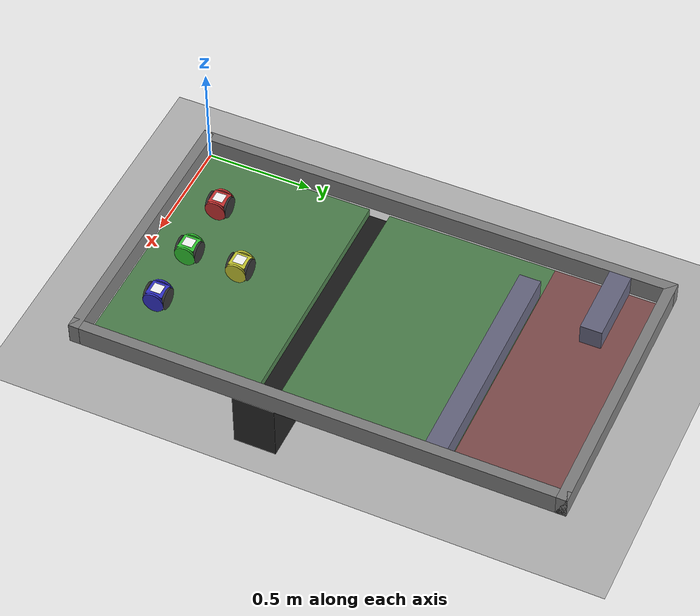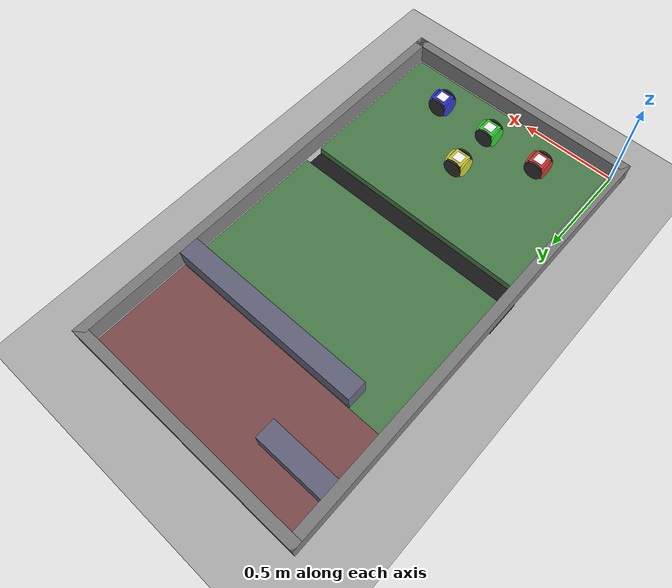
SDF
<?xml version="1.0"?>
<sdf version="1.9">
  <world name="docking_demo">
    <!-- Physics configuration - ODE with soft constraints -->
    <physics name="1ms" type="ode">
      <max_step_size>0.001</max_step_size>
      <real_time_factor>1.0</real_time_factor>
      <ode>
        <solver>
          <type>world</type>
          <iters>200</iters>
          <sor>1.3</sor>
        </solver>
        <constraints>
          <cfm>0.001</cfm>
          <erp>0.2</erp>
          <contact_max_correcting_vel>100</contact_max_correcting_vel>
          <contact_surface_layer>0.001</contact_surface_layer>
        </constraints>
      </ode>
    </physics>

    <!-- Required system plugins -->
    <plugin filename="gz-sim-physics-system" name="gz::sim::systems::Physics"></plugin>
    <plugin filename="gz-sim-user-commands-system" name="gz::sim::systems::UserCommands"></plugin>
    <plugin filename="gz-sim-scene-broadcaster-system" name="gz::sim::systems::SceneBroadcaster"></plugin>
    <plugin filename="gz-sim-imu-system" name="gz::sim::systems::Imu"></plugin>
    <plugin filename="gz-sim-sensors-system" name="gz::sim::systems::Sensors">
      <render_engine>ogre2</render_engine>
    </plugin>

    <!-- AttachablePlugin for dynamic docking -->
    <plugin filename="libattachable_joint_plugin.so" name="attachable_joint::AttachableJoint">
      <attachtopic>/attach</attachtopic>
    </plugin>

    <!-- Lighting -->
    <light type="directional" name="sun">
      <cast_shadows>true</cast_shadows>
      <pose>0 0 10 0 0 0</pose>
      <diffuse>0.8 0.8 0.8 1</diffuse>
      <specular>0.2 0.2 0.2 1</specular>
      <attenuation>
        <range>1000</range>
        <constant>0.9</constant>
        <linear>0.01</linear>
        <quadratic>0.001</quadratic>
      </attenuation>
      <direction>-0.5 0.1 -0.9</direction>
    </light>

    <!-- ==================== ENVIRONMENT ==================== -->

    <!-- Ground plane - visual only at z=-0.05, no collision (platforms provide collision) -->
    <model name="ground_plane">
      <static>true</static>
      <pose>0 0 -0.05 0 0 0</pose>
      <link name="link">
        <visual name="visual">
          <geometry><plane><normal>0 0 1</normal><size>10 10</size></plane></geometry>
          <material>
            <ambient>0.2 0.2 0.2 1</ambient>
            <diffuse>0.2 0.2 0.2 1</diffuse>
            <specular>0.1 0.1 0.1 1</specular>
          </material>
        </visual>
      </link>
    </model>

    <!-- Start platform (solid ground before the gap) - enlarged for docking -->
    <!-- y spans 0 to 0.8 (80cm deep), gap is now 10cm -->
    <model name="start_platform">
      <static>true</static>
      <pose>0.6 0.4 -0.03 0 0 0</pose>
      <link name="link">
        <collision name="collision">
          <geometry><box><size>1.2 0.8 0.04</size></box></geometry>
        </collision>
        <visual name="visual">
          <geometry><box><size>1.2 0.8 0.04</size></box></geometry>
          <material>
            <ambient>0.3 0.5 0.3 1</ambient>
            <diffuse>0.3 0.5 0.3 1</diffuse>
          </material>
        </visual>
      </link>
    </model>

    <!-- Middle platform (after the chasm, before narrow passage) - enlarged for docking -->
    <!-- y spans 0.9 to 1.7 (80cm deep) - extends to narrow wall -->
    <model name="middle_platform">
      <static>true</static>
      <pose>0.6 1.3 -0.03 0 0 0</pose>
      <link name="link">
        <collision name="collision">
          <geometry><box><size>1.2 0.8 0.04</size></box></geometry>
        </collision>
        <visual name="visual">
          <geometry><box><size>1.2 0.8 0.04</size></box></geometry>
          <material>
            <ambient>0.3 0.5 0.3 1</ambient>
            <diffuse>0.3 0.5 0.3 1</diffuse>
          </material>
        </visual>
      </link>
    </model>

    <!-- End platform (after narrow passage) -->
    <!-- y spans 1.7 to 2.2 -->
    <model name="end_platform">
      <static>true</static>
      <pose>0.6 1.95 -0.03 0 0 0</pose>
      <link name="link">
        <collision name="collision">
          <geometry><box><size>1.2 0.5 0.04</size></box></geometry>
        </collision>
        <visual name="visual">
          <geometry><box><size>1.2 0.5 0.04</size></box></geometry>
          <material>
            <ambient>0.5 0.3 0.3 1</ambient>
            <diffuse>0.5 0.3 0.3 1</diffuse>
          </material>
        </visual>
      </link>
    </model>

    <!-- GAP/CHASM: 20cm wide (y=0.7 to y=0.9) - robots must form chain to cross -->
    <!-- Visual indicator for the chasm (dark pit) -->
    <model name="chasm_visual">
      <static>true</static>
      <pose>0.6 0.8 -0.2 0 0 0</pose>
      <link name="link">
        <visual name="visual">
          <geometry><box><size>1.2 0.2 0.3</size></box></geometry>
          <material>
            <ambient>0.1 0.1 0.1 1</ambient>
            <diffuse>0.1 0.1 0.1 1</diffuse>
          </material>
        </visual>
      </link>
    </model>

    <!-- NARROW PASSAGEWAY: 18cm opening on LEFT side - requires turn to navigate -->
    <!-- Opening is from x=0 to x=0.18, wall covers x=0.18 to x=1.2 -->
    <model name="narrow_wall">
      <static>true</static>
      <pose>0.69 1.65 0.05 0 0 0</pose>
      <link name="link">
        <collision name="collision">
          <geometry><box><size>1.02 0.1 0.1</size></box></geometry>
        </collision>
        <visual name="visual">
          <geometry><box><size>1.02 0.1 0.1</size></box></geometry>
          <material>
            <ambient>0.4 0.4 0.5 1</ambient>
            <diffuse>0.4 0.4 0.5 1</diffuse>
          </material>
        </visual>
      </link>
    </model>
    <!-- Passageway on left: x=0 to x=0.18 (18cm wide) - robots must turn left to pass -->

    <!-- CHICANE WALL: Forces a turn after passageway, chains cannot fit -->
    <!-- Perpendicular wall extending from left perimeter, blocking straight path -->
    <!-- Robot must turn right after entering to go around this wall -->
    <model name="chicane_wall">
      <static>true</static>
      <pose>0.175 2.0 0.05 0 0 0</pose>
      <link name="link">
        <collision name="collision">
          <geometry><box><size>0.35 0.1 0.1</size></box></geometry>
        </collision>
        <visual name="visual">
          <geometry><box><size>0.35 0.1 0.1</size></box></geometry>
          <material>
            <ambient>0.4 0.4 0.5 1</ambient>
            <diffuse>0.4 0.4 0.5 1</diffuse>
          </material>
        </visual>
      </link>
    </model>
    <!-- Chicane spans x=0 to x=0.35 at y=2.0, giving 25cm clearance from narrow wall -->

    <!-- PERIMETER WALLS -->
    <!-- Left wall (x=0) -->
    <model name="wall_left">
      <static>true</static>
      <pose>-0.025 1.1 0.05 0 0 0</pose>
      <link name="link">
        <collision name="collision">
          <geometry><box><size>0.05 2.3 0.1</size></box></geometry>
        </collision>
        <visual name="visual">
          <geometry><box><size>0.05 2.3 0.1</size></box></geometry>
          <material>
            <ambient>0.5 0.5 0.5 1</ambient>
            <diffuse>0.5 0.5 0.5 1</diffuse>
          </material>
        </visual>
      </link>
    </model>

    <!-- Right wall (x=1.2) -->
    <model name="wall_right">
      <static>true</static>
      <pose>1.225 1.1 0.05 0 0 0</pose>
      <link name="link">
        <collision name="collision">
          <geometry><box><size>0.05 2.3 0.1</size></box></geometry>
        </collision>
        <visual name="visual">
          <geometry><box><size>0.05 2.3 0.1</size></box></geometry>
          <material>
            <ambient>0.5 0.5 0.5 1</ambient>
            <diffuse>0.5 0.5 0.5 1</diffuse>
          </material>
        </visual>
      </link>
    </model>

    <!-- Back wall (y=0) -->
    <model name="wall_back">
      <static>true</static>
      <pose>0.6 -0.025 0.05 0 0 0</pose>
      <link name="link">
        <collision name="collision">
          <geometry><box><size>1.3 0.05 0.1</size></box></geometry>
        </collision>
        <visual name="visual">
          <geometry><box><size>1.3 0.05 0.1</size></box></geometry>
          <material>
            <ambient>0.5 0.5 0.5 1</ambient>
            <diffuse>0.5 0.5 0.5 1</diffuse>
          </material>
        </visual>
      </link>
    </model>

    <!-- Front wall (y=2.2) -->
    <model name="wall_front">
      <static>true</static>
      <pose>0.6 2.225 0.05 0 0 0</pose>
      <link name="link">
        <collision name="collision">
          <geometry><box><size>1.3 0.05 0.1</size></box></geometry>
        </collision>
        <visual name="visual">
          <geometry><box><size>1.3 0.05 0.1</size></box></geometry>
          <material>
            <ambient>0.5 0.5 0.5 1</ambient>
            <diffuse>0.5 0.5 0.5 1</diffuse>
          </material>
        </visual>
      </link>
    </model>

    <!-- ==================== OVERHEAD CAMERA ==================== -->
    <!-- Static camera positioned above environment for AprilTag detection -->
    <model name="overhead_camera">
      <static>true</static>
      <pose>0.6 1.1 2.5 0 1.5707 0</pose>

      <link name="camera_link">
        <inertial>
          <mass>0.1</mass>
          <inertia>
            <ixx>0.01</ixx><iyy>0.01</iyy><izz>0.01</izz>
            <ixy>0</ixy><ixz>0</ixz><iyz>0</iyz>
          </inertia>
        </inertial>

        <sensor name="camera_sensor" type="camera">
          <camera>
            <horizontal_fov>1.047</horizontal_fov>
            <image>
              <width>1280</width>
              <height>960</height>
              <format>RGB_INT8</format>
            </image>
            <clip>
              <near>0.1</near>
              <far>10.0</far>
            </clip>
          </camera>
          <always_on>true</always_on>
          <update_rate>30</update_rate>
          <visualize>true</visualize>
          <topic>camera/image</topic>
        </sensor>
      </link>
    </model>

    <!-- ==================== ROBOTS ==================== -->
    <!-- Robots start on the start platform (x=0-1.2, y=0-0.7) -->

    <!-- ========== ROBOT 0 (Red) ========== -->
    <model name="robot_0" canonical_link="chassis">
      <pose>0.30 0.20 0.05 0 0 0</pose>

      <!-- Chassis: 8x8x8 cm -->
      <link name="chassis">
        <inertial>
          <mass>0.8</mass>
          <inertia>
            <ixx>0.000853</ixx><iyy>0.000853</iyy><izz>0.000853</izz>
            <ixy>0</ixy><ixz>0</ixz><iyz>0</iyz>
          </inertia>
        </inertial>
        <collision name="collision">
          <geometry><box><size>0.08 0.08 0.08</size></box></geometry>
        </collision>
        <visual name="visual">
          <geometry><box><size>0.08 0.08 0.08</size></box></geometry>
          <material>
            <ambient>0.8 0.2 0.2 1</ambient>
            <diffuse>0.8 0.2 0.2 1</diffuse>
          </material>
        </visual>
      </link>

      <!-- Left drive wheel -->
      <link name="left_wheel">
        <pose relative_to="chassis">0 0.045 0 -1.5707 0 0</pose>
        <inertial>
          <mass>0.1</mass>
          <inertia>
            <ixx>0.000066</ixx><iyy>0.000066</iyy><izz>0.000125</izz>
            <ixy>0</ixy><ixz>0</ixz><iyz>0</iyz>
          </inertia>
        </inertial>
        <collision name="collision">
          <geometry><cylinder><radius>0.05</radius><length>0.01</length></cylinder></geometry>
          <surface>
            <friction><ode><mu>1.0</mu><mu2>1.0</mu2><slip1>0.01</slip1><slip2>0.01</slip2></ode></friction>
          </surface>
        </collision>
        <visual name="visual">
          <geometry><cylinder><radius>0.05</radius><length>0.01</length></cylinder></geometry>
          <material><ambient>0.2 0.2 0.2 1</ambient><diffuse>0.2 0.2 0.2 1</diffuse></material>
        </visual>
      </link>
      <joint name="left_wheel_joint" type="revolute">
        <parent>chassis</parent>
        <child>left_wheel</child>
        <axis>
          <xyz expressed_in="__model__">0 1 0</xyz>
          <limit><lower>-1.79769e+308</lower><upper>1.79769e+308</upper></limit>
                  </axis>
      </joint>

      <!-- Right drive wheel -->
      <link name="right_wheel">
        <pose relative_to="chassis">0 -0.045 0 -1.5707 0 0</pose>
        <inertial>
          <mass>0.1</mass>
          <inertia>
            <ixx>0.000066</ixx><iyy>0.000066</iyy><izz>0.000125</izz>
            <ixy>0</ixy><ixz>0</ixz><iyz>0</iyz>
          </inertia>
        </inertial>
        <collision name="collision">
          <geometry><cylinder><radius>0.05</radius><length>0.01</length></cylinder></geometry>
          <surface>
            <friction><ode><mu>1.0</mu><mu2>1.0</mu2><slip1>0.01</slip1><slip2>0.01</slip2></ode></friction>
          </surface>
        </collision>
        <visual name="visual">
          <geometry><cylinder><radius>0.05</radius><length>0.01</length></cylinder></geometry>
          <material><ambient>0.2 0.2 0.2 1</ambient><diffuse>0.2 0.2 0.2 1</diffuse></material>
        </visual>
      </link>
      <joint name="right_wheel_joint" type="revolute">
        <parent>chassis</parent>
        <child>right_wheel</child>
        <axis>
          <xyz expressed_in="__model__">0 1 0</xyz>
          <limit><lower>-1.79769e+308</lower><upper>1.79769e+308</upper></limit>
                  </axis>
      </joint>

      <!-- Front support wheel (docking face) - NO COLLISION -->
      <link name="front_wheel">
        <pose relative_to="chassis">0.045 0 0 0 1.5707 0</pose>
        <inertial>
          <mass>0.1</mass>
          <inertia>
            <ixx>0.000066</ixx><iyy>0.000066</iyy><izz>0.000125</izz>
            <ixy>0</ixy><ixz>0</ixz><iyz>0</iyz>
          </inertia>
        </inertial>
        <visual name="visual">
          <geometry><cylinder><radius>0.05</radius><length>0.01</length></cylinder></geometry>
          <material><ambient>0.8 0.2 0.2 1</ambient><diffuse>0.8 0.2 0.2 1</diffuse></material>
        </visual>
      </link>
      <joint name="front_wheel_joint" type="revolute">
        <parent>chassis</parent>
        <child>front_wheel</child>
        <axis>
          <xyz expressed_in="__model__">1 0 0</xyz>
          <limit><lower>-1.79769e+308</lower><upper>1.79769e+308</upper></limit>
                  </axis>
      </joint>

      <!-- Back support wheel (docking face) - NO COLLISION -->
      <link name="back_wheel">
        <pose relative_to="chassis">-0.045 0 0 0 1.5707 0</pose>
        <inertial>
          <mass>0.1</mass>
          <inertia>
            <ixx>0.000066</ixx><iyy>0.000066</iyy><izz>0.000125</izz>
            <ixy>0</ixy><ixz>0</ixz><iyz>0</iyz>
          </inertia>
        </inertial>
        <visual name="visual">
          <geometry><cylinder><radius>0.05</radius><length>0.01</length></cylinder></geometry>
          <material><ambient>0.8 0.2 0.2 1</ambient><diffuse>0.8 0.2 0.2 1</diffuse></material>
        </visual>
      </link>
      <joint name="back_wheel_joint" type="revolute">
        <parent>chassis</parent>
        <child>back_wheel</child>
        <axis>
          <xyz expressed_in="__model__">1 0 0</xyz>
          <limit><lower>-1.79769e+308</lower><upper>1.79769e+308</upper></limit>
                  </axis>
      </joint>

      <!-- Front caster (small frictionless sphere for stability) -->
      <!-- Slightly smaller than drive wheels so it only touches when tipping -->
      <link name="front_caster">
        <pose relative_to="chassis">0.04 0 -0.042 0 0 0</pose>
        <inertial>
          <mass>0.01</mass>
          <inertia>
            <ixx>0.000001</ixx><iyy>0.000001</iyy><izz>0.000001</izz>
            <ixy>0</ixy><ixz>0</ixz><iyz>0</iyz>
          </inertia>
        </inertial>
        <collision name="collision">
          <geometry><sphere><radius>0.006</radius></sphere></geometry>
          <surface>
            <friction><ode><mu>0</mu><mu2>0</mu2></ode></friction>
          </surface>
        </collision>
        <visual name="visual">
          <geometry><sphere><radius>0.006</radius></sphere></geometry>
          <material><ambient>0.3 0.3 0.3 1</ambient><diffuse>0.3 0.3 0.3 1</diffuse></material>
        </visual>
      </link>
      <joint name="front_caster_joint" type="fixed">
        <parent>chassis</parent>
        <child>front_caster</child>
      </joint>

      <!-- Back caster (small frictionless sphere for stability) -->
      <link name="back_caster">
        <pose relative_to="chassis">-0.04 0 -0.042 0 0 0</pose>
        <inertial>
          <mass>0.01</mass>
          <inertia>
            <ixx>0.000001</ixx><iyy>0.000001</iyy><izz>0.000001</izz>
            <ixy>0</ixy><ixz>0</ixz><iyz>0</iyz>
          </inertia>
        </inertial>
        <collision name="collision">
          <geometry><sphere><radius>0.006</radius></sphere></geometry>
          <surface>
            <friction><ode><mu>0</mu><mu2>0</mu2></ode></friction>
          </surface>
        </collision>
        <visual name="visual">
          <geometry><sphere><radius>0.006</radius></sphere></geometry>
          <material><ambient>0.3 0.3 0.3 1</ambient><diffuse>0.3 0.3 0.3 1</diffuse></material>
        </visual>
      </link>
      <joint name="back_caster_joint" type="fixed">
        <parent>chassis</parent>
        <child>back_caster</child>
      </joint>

      <!-- IMU sensor -->
      <link name="imu_link">
        <pose relative_to="chassis">0 0 0 0 0 0</pose>
        <inertial>
          <mass>0.01</mass>
          <inertia>
            <ixx>0.000001</ixx><iyy>0.000001</iyy><izz>0.000001</izz>
            <ixy>0</ixy><ixz>0</ixz><iyz>0</iyz>
          </inertia>
        </inertial>
        <sensor name="imu_sensor" type="imu">
          <always_on>1</always_on>
          <update_rate>100</update_rate>
          <visualize>false</visualize>
          <imu>
            <angular_velocity>
              <x><noise type="gaussian"><mean>0.0</mean><stddev>0.0001</stddev></noise></x>
              <y><noise type="gaussian"><mean>0.0</mean><stddev>0.0001</stddev></noise></y>
              <z><noise type="gaussian"><mean>0.0</mean><stddev>0.0001</stddev></noise></z>
            </angular_velocity>
            <linear_acceleration>
              <x><noise type="gaussian"><mean>0.0</mean><stddev>0.001</stddev></noise></x>
              <y><noise type="gaussian"><mean>0.0</mean><stddev>0.001</stddev></noise></y>
              <z><noise type="gaussian"><mean>0.0</mean><stddev>0.001</stddev></noise></z>
            </linear_acceleration>
          </imu>
        </sensor>
      </link>
      <joint name="imu_joint" type="fixed">
        <parent>chassis</parent>
        <child>imu_link</child>
      </joint>

      <!-- AprilTag marker for overhead camera detection -->
      <link name="apriltag_marker">
        <pose relative_to="chassis">0 0 0.045 0 0 0</pose>
        <inertial>
          <mass>0.001</mass>
          <inertia>
            <ixx>0.0000001</ixx><iyy>0.0000001</iyy><izz>0.0000001</izz>
            <ixy>0</ixy><ixz>0</ixz><iyz>0</iyz>
          </inertia>
        </inertial>
        <visual name="apriltag_visual">
          <geometry><box><size>0.05 0.05 0.0005</size></box></geometry>
          <material>
            <ambient>1 1 1 1</ambient>
            <diffuse>1 1 1 1</diffuse>
            <specular>0 0 0 1</specular>
            <emissive>0 0 0 1</emissive>
            <pbr>
              <metal>
                <albedo_map>../materials/textures/apriltag_36h11_id_0.png</albedo_map>
                <metalness>0.0</metalness>
                <roughness>1.0</roughness>
              </metal>
            </pbr>
          </material>
        </visual>
      </link>
      <joint name="apriltag_joint" type="fixed">
        <parent>chassis</parent>
        <child>apriltag_marker</child>
      </joint>

      <plugin filename="gz-sim-diff-drive-system" name="gz::sim::systems::DiffDrive">
        <left_joint>left_wheel_joint</left_joint>
        <right_joint>right_wheel_joint</right_joint>
        <wheel_separation>0.09</wheel_separation>
        <wheel_radius>0.05</wheel_radius>
        <odom_publish_frequency>10</odom_publish_frequency>
        <cmd_timeout>10.0</cmd_timeout>
      </plugin>
    </model>

    <!-- ========== ROBOT 1 (Green) ========== -->
    <model name="robot_1" canonical_link="chassis">
      <pose>0.60 0.20 0.05 0 0 0</pose>

      <link name="chassis">
        <inertial>
          <mass>0.8</mass>
          <inertia>
            <ixx>0.000853</ixx><iyy>0.000853</iyy><izz>0.000853</izz>
            <ixy>0</ixy><ixz>0</ixz><iyz>0</iyz>
          </inertia>
        </inertial>
        <collision name="collision">
          <geometry><box><size>0.08 0.08 0.08</size></box></geometry>
        </collision>
        <visual name="visual">
          <geometry><box><size>0.08 0.08 0.08</size></box></geometry>
          <material>
            <ambient>0.2 0.8 0.2 1</ambient>
            <diffuse>0.2 0.8 0.2 1</diffuse>
          </material>
        </visual>
      </link>

      <link name="left_wheel">
        <pose relative_to="chassis">0 0.045 0 -1.5707 0 0</pose>
        <inertial>
          <mass>0.1</mass>
          <inertia>
            <ixx>0.000066</ixx><iyy>0.000066</iyy><izz>0.000125</izz>
            <ixy>0</ixy><ixz>0</ixz><iyz>0</iyz>
          </inertia>
        </inertial>
        <collision name="collision">
          <geometry><cylinder><radius>0.05</radius><length>0.01</length></cylinder></geometry>
          <surface>
            <friction><ode><mu>1.0</mu><mu2>1.0</mu2><slip1>0.01</slip1><slip2>0.01</slip2></ode></friction>
          </surface>
        </collision>
        <visual name="visual">
          <geometry><cylinder><radius>0.05</radius><length>0.01</length></cylinder></geometry>
          <material><ambient>0.2 0.2 0.2 1</ambient><diffuse>0.2 0.2 0.2 1</diffuse></material>
        </visual>
      </link>
      <joint name="left_wheel_joint" type="revolute">
        <parent>chassis</parent>
        <child>left_wheel</child>
        <axis>
          <xyz expressed_in="__model__">0 1 0</xyz>
          <limit><lower>-1.79769e+308</lower><upper>1.79769e+308</upper></limit>
                  </axis>
      </joint>

      <link name="right_wheel">
        <pose relative_to="chassis">0 -0.045 0 -1.5707 0 0</pose>
        <inertial>
          <mass>0.1</mass>
          <inertia>
            <ixx>0.000066</ixx><iyy>0.000066</iyy><izz>0.000125</izz>
            <ixy>0</ixy><ixz>0</ixz><iyz>0</iyz>
          </inertia>
        </inertial>
        <collision name="collision">
          <geometry><cylinder><radius>0.05</radius><length>0.01</length></cylinder></geometry>
          <surface>
            <friction><ode><mu>1.0</mu><mu2>1.0</mu2><slip1>0.01</slip1><slip2>0.01</slip2></ode></friction>
          </surface>
        </collision>
        <visual name="visual">
          <geometry><cylinder><radius>0.05</radius><length>0.01</length></cylinder></geometry>
          <material><ambient>0.2 0.2 0.2 1</ambient><diffuse>0.2 0.2 0.2 1</diffuse></material>
        </visual>
      </link>
      <joint name="right_wheel_joint" type="revolute">
        <parent>chassis</parent>
        <child>right_wheel</child>
        <axis>
          <xyz expressed_in="__model__">0 1 0</xyz>
          <limit><lower>-1.79769e+308</lower><upper>1.79769e+308</upper></limit>
                  </axis>
      </joint>

      <!-- Front support wheel (docking face) - NO COLLISION -->
      <link name="front_wheel">
        <pose relative_to="chassis">0.045 0 0 0 1.5707 0</pose>
        <inertial>
          <mass>0.1</mass>
          <inertia>
            <ixx>0.000066</ixx><iyy>0.000066</iyy><izz>0.000125</izz>
            <ixy>0</ixy><ixz>0</ixz><iyz>0</iyz>
          </inertia>
        </inertial>
        <visual name="visual">
          <geometry><cylinder><radius>0.05</radius><length>0.01</length></cylinder></geometry>
          <material><ambient>0.2 0.8 0.2 1</ambient><diffuse>0.2 0.8 0.2 1</diffuse></material>
        </visual>
      </link>
      <joint name="front_wheel_joint" type="revolute">
        <parent>chassis</parent>
        <child>front_wheel</child>
        <axis>
          <xyz expressed_in="__model__">1 0 0</xyz>
          <limit><lower>-1.79769e+308</lower><upper>1.79769e+308</upper></limit>
                  </axis>
      </joint>

      <!-- Back support wheel (docking face) - NO COLLISION -->
      <link name="back_wheel">
        <pose relative_to="chassis">-0.045 0 0 0 1.5707 0</pose>
        <inertial>
          <mass>0.1</mass>
          <inertia>
            <ixx>0.000066</ixx><iyy>0.000066</iyy><izz>0.000125</izz>
            <ixy>0</ixy><ixz>0</ixz><iyz>0</iyz>
          </inertia>
        </inertial>
        <visual name="visual">
          <geometry><cylinder><radius>0.05</radius><length>0.01</length></cylinder></geometry>
          <material><ambient>0.2 0.8 0.2 1</ambient><diffuse>0.2 0.8 0.2 1</diffuse></material>
        </visual>
      </link>
      <joint name="back_wheel_joint" type="revolute">
        <parent>chassis</parent>
        <child>back_wheel</child>
        <axis>
          <xyz expressed_in="__model__">1 0 0</xyz>
          <limit><lower>-1.79769e+308</lower><upper>1.79769e+308</upper></limit>
                  </axis>
      </joint>

      <!-- Front caster (small frictionless sphere for stability) -->
      <!-- Slightly smaller than drive wheels so it only touches when tipping -->
      <link name="front_caster">
        <pose relative_to="chassis">0.04 0 -0.042 0 0 0</pose>
        <inertial>
          <mass>0.01</mass>
          <inertia>
            <ixx>0.000001</ixx><iyy>0.000001</iyy><izz>0.000001</izz>
            <ixy>0</ixy><ixz>0</ixz><iyz>0</iyz>
          </inertia>
        </inertial>
        <collision name="collision">
          <geometry><sphere><radius>0.006</radius></sphere></geometry>
          <surface>
            <friction><ode><mu>0</mu><mu2>0</mu2></ode></friction>
          </surface>
        </collision>
        <visual name="visual">
          <geometry><sphere><radius>0.006</radius></sphere></geometry>
          <material><ambient>0.3 0.3 0.3 1</ambient><diffuse>0.3 0.3 0.3 1</diffuse></material>
        </visual>
      </link>
      <joint name="front_caster_joint" type="fixed">
        <parent>chassis</parent>
        <child>front_caster</child>
      </joint>

      <!-- Back caster (small frictionless sphere for stability) -->
      <link name="back_caster">
        <pose relative_to="chassis">-0.04 0 -0.042 0 0 0</pose>
        <inertial>
          <mass>0.01</mass>
          <inertia>
            <ixx>0.000001</ixx><iyy>0.000001</iyy><izz>0.000001</izz>
            <ixy>0</ixy><ixz>0</ixz><iyz>0</iyz>
          </inertia>
        </inertial>
        <collision name="collision">
          <geometry><sphere><radius>0.006</radius></sphere></geometry>
          <surface>
            <friction><ode><mu>0</mu><mu2>0</mu2></ode></friction>
          </surface>
        </collision>
        <visual name="visual">
          <geometry><sphere><radius>0.006</radius></sphere></geometry>
          <material><ambient>0.3 0.3 0.3 1</ambient><diffuse>0.3 0.3 0.3 1</diffuse></material>
        </visual>
      </link>
      <joint name="back_caster_joint" type="fixed">
        <parent>chassis</parent>
        <child>back_caster</child>
      </joint>

      <link name="imu_link">
        <pose relative_to="chassis">0 0 0 0 0 0</pose>
        <inertial>
          <mass>0.01</mass>
          <inertia>
            <ixx>0.000001</ixx><iyy>0.000001</iyy><izz>0.000001</izz>
            <ixy>0</ixy><ixz>0</ixz><iyz>0</iyz>
          </inertia>
        </inertial>
        <sensor name="imu_sensor" type="imu">
          <always_on>1</always_on>
          <update_rate>100</update_rate>
          <visualize>false</visualize>
          <imu>
            <angular_velocity>
              <x><noise type="gaussian"><mean>0.0</mean><stddev>0.0001</stddev></noise></x>
              <y><noise type="gaussian"><mean>0.0</mean><stddev>0.0001</stddev></noise></y>
              <z><noise type="gaussian"><mean>0.0</mean><stddev>0.0001</stddev></noise></z>
            </angular_velocity>
            <linear_acceleration>
              <x><noise type="gaussian"><mean>0.0</mean><stddev>0.001</stddev></noise></x>
              <y><noise type="gaussian"><mean>0.0</mean><stddev>0.001</stddev></noise></y>
              <z><noise type="gaussian"><mean>0.0</mean><stddev>0.001</stddev></noise></z>
            </linear_acceleration>
          </imu>
        </sensor>
      </link>
      <joint name="imu_joint" type="fixed">
        <parent>chassis</parent>
        <child>imu_link</child>
      </joint>

      <!-- AprilTag marker for overhead camera detection -->
      <link name="apriltag_marker">
        <pose relative_to="chassis">0 0 0.045 0 0 0</pose>
        <inertial>
          <mass>0.001</mass>
          <inertia>
            <ixx>0.0000001</ixx><iyy>0.0000001</iyy><izz>0.0000001</izz>
            <ixy>0</ixy><ixz>0</ixz><iyz>0</iyz>
          </inertia>
        </inertial>
        <visual name="apriltag_visual">
          <geometry><box><size>0.05 0.05 0.0005</size></box></geometry>
          <material>
            <ambient>1 1 1 1</ambient>
            <diffuse>1 1 1 1</diffuse>
            <specular>0 0 0 1</specular>
            <emissive>0 0 0 1</emissive>
            <pbr>
              <metal>
                <albedo_map>../materials/textures/apriltag_36h11_id_1.png</albedo_map>
                <metalness>0.0</metalness>
                <roughness>1.0</roughness>
              </metal>
            </pbr>
          </material>
        </visual>
      </link>
      <joint name="apriltag_joint" type="fixed">
        <parent>chassis</parent>
        <child>apriltag_marker</child>
      </joint>

      <plugin filename="gz-sim-diff-drive-system" name="gz::sim::systems::DiffDrive">
        <left_joint>left_wheel_joint</left_joint>
        <right_joint>right_wheel_joint</right_joint>
        <wheel_separation>0.09</wheel_separation>
        <wheel_radius>0.05</wheel_radius>
        <odom_publish_frequency>10</odom_publish_frequency>
        <cmd_timeout>10.0</cmd_timeout>
      </plugin>
    </model>

    <!-- ========== ROBOT 2 (Blue) ========== -->
    <model name="robot_2" canonical_link="chassis">
      <pose>0.90 0.20 0.05 0 0 0</pose>

      <link name="chassis">
        <inertial>
          <mass>0.8</mass>
          <inertia>
            <ixx>0.000853</ixx><iyy>0.000853</iyy><izz>0.000853</izz>
            <ixy>0</ixy><ixz>0</ixz><iyz>0</iyz>
          </inertia>
        </inertial>
        <collision name="collision">
          <geometry><box><size>0.08 0.08 0.08</size></box></geometry>
        </collision>
        <visual name="visual">
          <geometry><box><size>0.08 0.08 0.08</size></box></geometry>
          <material>
            <ambient>0.2 0.2 0.8 1</ambient>
            <diffuse>0.2 0.2 0.8 1</diffuse>
          </material>
        </visual>
      </link>

      <link name="left_wheel">
        <pose relative_to="chassis">0 0.045 0 -1.5707 0 0</pose>
        <inertial>
          <mass>0.1</mass>
          <inertia>
            <ixx>0.000066</ixx><iyy>0.000066</iyy><izz>0.000125</izz>
            <ixy>0</ixy><ixz>0</ixz><iyz>0</iyz>
          </inertia>
        </inertial>
        <collision name="collision">
          <geometry><cylinder><radius>0.05</radius><length>0.01</length></cylinder></geometry>
          <surface>
            <friction><ode><mu>1.0</mu><mu2>1.0</mu2><slip1>0.01</slip1><slip2>0.01</slip2></ode></friction>
          </surface>
        </collision>
        <visual name="visual">
          <geometry><cylinder><radius>0.05</radius><length>0.01</length></cylinder></geometry>
          <material><ambient>0.2 0.2 0.2 1</ambient><diffuse>0.2 0.2 0.2 1</diffuse></material>
        </visual>
      </link>
      <joint name="left_wheel_joint" type="revolute">
        <parent>chassis</parent>
        <child>left_wheel</child>
        <axis>
          <xyz expressed_in="__model__">0 1 0</xyz>
          <limit><lower>-1.79769e+308</lower><upper>1.79769e+308</upper></limit>
                  </axis>
      </joint>

      <link name="right_wheel">
        <pose relative_to="chassis">0 -0.045 0 -1.5707 0 0</pose>
        <inertial>
          <mass>0.1</mass>
          <inertia>
            <ixx>0.000066</ixx><iyy>0.000066</iyy><izz>0.000125</izz>
            <ixy>0</ixy><ixz>0</ixz><iyz>0</iyz>
          </inertia>
        </inertial>
        <collision name="collision">
          <geometry><cylinder><radius>0.05</radius><length>0.01</length></cylinder></geometry>
          <surface>
            <friction><ode><mu>1.0</mu><mu2>1.0</mu2><slip1>0.01</slip1><slip2>0.01</slip2></ode></friction>
          </surface>
        </collision>
        <visual name="visual">
          <geometry><cylinder><radius>0.05</radius><length>0.01</length></cylinder></geometry>
          <material><ambient>0.2 0.2 0.2 1</ambient><diffuse>0.2 0.2 0.2 1</diffuse></material>
        </visual>
      </link>
      <joint name="right_wheel_joint" type="revolute">
        <parent>chassis</parent>
        <child>right_wheel</child>
        <axis>
          <xyz expressed_in="__model__">0 1 0</xyz>
          <limit><lower>-1.79769e+308</lower><upper>1.79769e+308</upper></limit>
                  </axis>
      </joint>

      <!-- Front support wheel (docking face) - NO COLLISION -->
      <link name="front_wheel">
        <pose relative_to="chassis">0.045 0 0 0 1.5707 0</pose>
        <inertial>
          <mass>0.1</mass>
          <inertia>
            <ixx>0.000066</ixx><iyy>0.000066</iyy><izz>0.000125</izz>
            <ixy>0</ixy><ixz>0</ixz><iyz>0</iyz>
          </inertia>
        </inertial>
        <visual name="visual">
          <geometry><cylinder><radius>0.05</radius><length>0.01</length></cylinder></geometry>
          <material><ambient>0.2 0.2 0.8 1</ambient><diffuse>0.2 0.2 0.8 1</diffuse></material>
        </visual>
      </link>
      <joint name="front_wheel_joint" type="revolute">
        <parent>chassis</parent>
        <child>front_wheel</child>
        <axis>
          <xyz expressed_in="__model__">1 0 0</xyz>
          <limit><lower>-1.79769e+308</lower><upper>1.79769e+308</upper></limit>
                  </axis>
      </joint>

      <!-- Back support wheel (docking face) - NO COLLISION -->
      <link name="back_wheel">
        <pose relative_to="chassis">-0.045 0 0 0 1.5707 0</pose>
        <inertial>
          <mass>0.1</mass>
          <inertia>
            <ixx>0.000066</ixx><iyy>0.000066</iyy><izz>0.000125</izz>
            <ixy>0</ixy><ixz>0</ixz><iyz>0</iyz>
          </inertia>
        </inertial>
        <visual name="visual">
          <geometry><cylinder><radius>0.05</radius><length>0.01</length></cylinder></geometry>
          <material><ambient>0.2 0.2 0.8 1</ambient><diffuse>0.2 0.2 0.8 1</diffuse></material>
        </visual>
      </link>
      <joint name="back_wheel_joint" type="revolute">
        <parent>chassis</parent>
        <child>back_wheel</child>
        <axis>
          <xyz expressed_in="__model__">1 0 0</xyz>
          <limit><lower>-1.79769e+308</lower><upper>1.79769e+308</upper></limit>
                  </axis>
      </joint>

      <!-- Front caster (small frictionless sphere for stability) -->
      <!-- Slightly smaller than drive wheels so it only touches when tipping -->
      <link name="front_caster">
        <pose relative_to="chassis">0.04 0 -0.042 0 0 0</pose>
        <inertial>
          <mass>0.01</mass>
          <inertia>
            <ixx>0.000001</ixx><iyy>0.000001</iyy><izz>0.000001</izz>
            <ixy>0</ixy><ixz>0</ixz><iyz>0</iyz>
          </inertia>
        </inertial>
        <collision name="collision">
          <geometry><sphere><radius>0.006</radius></sphere></geometry>
          <surface>
            <friction><ode><mu>0</mu><mu2>0</mu2></ode></friction>
          </surface>
        </collision>
        <visual name="visual">
          <geometry><sphere><radius>0.006</radius></sphere></geometry>
          <material><ambient>0.3 0.3 0.3 1</ambient><diffuse>0.3 0.3 0.3 1</diffuse></material>
        </visual>
      </link>
      <joint name="front_caster_joint" type="fixed">
        <parent>chassis</parent>
        <child>front_caster</child>
      </joint>

      <!-- Back caster (small frictionless sphere for stability) -->
      <link name="back_caster">
        <pose relative_to="chassis">-0.04 0 -0.042 0 0 0</pose>
        <inertial>
          <mass>0.01</mass>
          <inertia>
            <ixx>0.000001</ixx><iyy>0.000001</iyy><izz>0.000001</izz>
            <ixy>0</ixy><ixz>0</ixz><iyz>0</iyz>
          </inertia>
        </inertial>
        <collision name="collision">
          <geometry><sphere><radius>0.006</radius></sphere></geometry>
          <surface>
            <friction><ode><mu>0</mu><mu2>0</mu2></ode></friction>
          </surface>
        </collision>
        <visual name="visual">
          <geometry><sphere><radius>0.006</radius></sphere></geometry>
          <material><ambient>0.3 0.3 0.3 1</ambient><diffuse>0.3 0.3 0.3 1</diffuse></material>
        </visual>
      </link>
      <joint name="back_caster_joint" type="fixed">
        <parent>chassis</parent>
        <child>back_caster</child>
      </joint>

      <link name="imu_link">
        <pose relative_to="chassis">0 0 0 0 0 0</pose>
        <inertial>
          <mass>0.01</mass>
          <inertia>
            <ixx>0.000001</ixx><iyy>0.000001</iyy><izz>0.000001</izz>
            <ixy>0</ixy><ixz>0</ixz><iyz>0</iyz>
          </inertia>
        </inertial>
        <sensor name="imu_sensor" type="imu">
          <always_on>1</always_on>
          <update_rate>100</update_rate>
          <visualize>false</visualize>
          <imu>
            <angular_velocity>
              <x><noise type="gaussian"><mean>0.0</mean><stddev>0.0001</stddev></noise></x>
              <y><noise type="gaussian"><mean>0.0</mean><stddev>0.0001</stddev></noise></y>
              <z><noise type="gaussian"><mean>0.0</mean><stddev>0.0001</stddev></noise></z>
            </angular_velocity>
            <linear_acceleration>
              <x><noise type="gaussian"><mean>0.0</mean><stddev>0.001</stddev></noise></x>
              <y><noise type="gaussian"><mean>0.0</mean><stddev>0.001</stddev></noise></y>
              <z><noise type="gaussian"><mean>0.0</mean><stddev>0.001</stddev></noise></z>
            </linear_acceleration>
          </imu>
        </sensor>
      </link>
      <joint name="imu_joint" type="fixed">
        <parent>chassis</parent>
        <child>imu_link</child>
      </joint>

      <!-- AprilTag marker for overhead camera detection -->
      <link name="apriltag_marker">
        <pose relative_to="chassis">0 0 0.045 0 0 0</pose>
        <inertial>
          <mass>0.001</mass>
          <inertia>
            <ixx>0.0000001</ixx><iyy>0.0000001</iyy><izz>0.0000001</izz>
            <ixy>0</ixy><ixz>0</ixz><iyz>0</iyz>
          </inertia>
        </inertial>
        <visual name="apriltag_visual">
          <geometry><box><size>0.05 0.05 0.0005</size></box></geometry>
          <material>
            <ambient>1 1 1 1</ambient>
            <diffuse>1 1 1 1</diffuse>
            <specular>0 0 0 1</specular>
            <emissive>0 0 0 1</emissive>
            <pbr>
              <metal>
                <albedo_map>../materials/textures/apriltag_36h11_id_2.png</albedo_map>
                <metalness>0.0</metalness>
                <roughness>1.0</roughness>
              </metal>
            </pbr>
          </material>
        </visual>
      </link>
      <joint name="apriltag_joint" type="fixed">
        <parent>chassis</parent>
        <child>apriltag_marker</child>
      </joint>

      <plugin filename="gz-sim-diff-drive-system" name="gz::sim::systems::DiffDrive">
        <left_joint>left_wheel_joint</left_joint>
        <right_joint>right_wheel_joint</right_joint>
        <wheel_separation>0.09</wheel_separation>
        <wheel_radius>0.05</wheel_radius>
        <odom_publish_frequency>10</odom_publish_frequency>
        <cmd_timeout>10.0</cmd_timeout>
      </plugin>
    </model>

    <!-- ========== ROBOT 3 (Yellow) ========== -->
    <model name="robot_3" canonical_link="chassis">
      <pose>0.60 0.45 0.05 0 0 0</pose>

      <link name="chassis">
        <inertial>
          <mass>0.8</mass>
          <inertia>
            <ixx>0.000853</ixx><iyy>0.000853</iyy><izz>0.000853</izz>
            <ixy>0</ixy><ixz>0</ixz><iyz>0</iyz>
          </inertia>
        </inertial>
        <collision name="collision">
          <geometry><box><size>0.08 0.08 0.08</size></box></geometry>
        </collision>
        <visual name="visual">
          <geometry><box><size>0.08 0.08 0.08</size></box></geometry>
          <material>
            <ambient>0.8 0.8 0.2 1</ambient>
            <diffuse>0.8 0.8 0.2 1</diffuse>
          </material>
        </visual>
      </link>

      <link name="left_wheel">
        <pose relative_to="chassis">0 0.045 0 -1.5707 0 0</pose>
        <inertial>
          <mass>0.1</mass>
          <inertia>
            <ixx>0.000066</ixx><iyy>0.000066</iyy><izz>0.000125</izz>
            <ixy>0</ixy><ixz>0</ixz><iyz>0</iyz>
          </inertia>
        </inertial>
        <collision name="collision">
          <geometry><cylinder><radius>0.05</radius><length>0.01</length></cylinder></geometry>
          <surface>
            <friction><ode><mu>1.0</mu><mu2>1.0</mu2><slip1>0.01</slip1><slip2>0.01</slip2></ode></friction>
          </surface>
        </collision>
        <visual name="visual">
          <geometry><cylinder><radius>0.05</radius><length>0.01</length></cylinder></geometry>
          <material><ambient>0.2 0.2 0.2 1</ambient><diffuse>0.2 0.2 0.2 1</diffuse></material>
        </visual>
      </link>
      <joint name="left_wheel_joint" type="revolute">
        <parent>chassis</parent>
        <child>left_wheel</child>
        <axis>
          <xyz expressed_in="__model__">0 1 0</xyz>
          <limit><lower>-1.79769e+308</lower><upper>1.79769e+308</upper></limit>
                  </axis>
      </joint>

      <link name="right_wheel">
        <pose relative_to="chassis">0 -0.045 0 -1.5707 0 0</pose>
        <inertial>
          <mass>0.1</mass>
          <inertia>
            <ixx>0.000066</ixx><iyy>0.000066</iyy><izz>0.000125</izz>
            <ixy>0</ixy><ixz>0</ixz><iyz>0</iyz>
          </inertia>
        </inertial>
        <collision name="collision">
          <geometry><cylinder><radius>0.05</radius><length>0.01</length></cylinder></geometry>
          <surface>
            <friction><ode><mu>1.0</mu><mu2>1.0</mu2><slip1>0.01</slip1><slip2>0.01</slip2></ode></friction>
          </surface>
        </collision>
        <visual name="visual">
          <geometry><cylinder><radius>0.05</radius><length>0.01</length></cylinder></geometry>
          <material><ambient>0.2 0.2 0.2 1</ambient><diffuse>0.2 0.2 0.2 1</diffuse></material>
        </visual>
      </link>
      <joint name="right_wheel_joint" type="revolute">
        <parent>chassis</parent>
        <child>right_wheel</child>
        <axis>
          <xyz expressed_in="__model__">0 1 0</xyz>
          <limit><lower>-1.79769e+308</lower><upper>1.79769e+308</upper></limit>
                  </axis>
      </joint>

      <!-- Front support wheel (docking face) - NO COLLISION -->
      <link name="front_wheel">
        <pose relative_to="chassis">0.045 0 0 0 1.5707 0</pose>
        <inertial>
          <mass>0.1</mass>
          <inertia>
            <ixx>0.000066</ixx><iyy>0.000066</iyy><izz>0.000125</izz>
            <ixy>0</ixy><ixz>0</ixz><iyz>0</iyz>
          </inertia>
        </inertial>
        <visual name="visual">
          <geometry><cylinder><radius>0.05</radius><length>0.01</length></cylinder></geometry>
          <material><ambient>0.8 0.8 0.2 1</ambient><diffuse>0.8 0.8 0.2 1</diffuse></material>
        </visual>
      </link>
      <joint name="front_wheel_joint" type="revolute">
        <parent>chassis</parent>
        <child>front_wheel</child>
        <axis>
          <xyz expressed_in="__model__">1 0 0</xyz>
          <limit><lower>-1.79769e+308</lower><upper>1.79769e+308</upper></limit>
                  </axis>
      </joint>

      <!-- Back support wheel (docking face) - NO COLLISION -->
      <link name="back_wheel">
        <pose relative_to="chassis">-0.045 0 0 0 1.5707 0</pose>
        <inertial>
          <mass>0.1</mass>
          <inertia>
            <ixx>0.000066</ixx><iyy>0.000066</iyy><izz>0.000125</izz>
            <ixy>0</ixy><ixz>0</ixz><iyz>0</iyz>
          </inertia>
        </inertial>
        <visual name="visual">
          <geometry><cylinder><radius>0.05</radius><length>0.01</length></cylinder></geometry>
          <material><ambient>0.8 0.8 0.2 1</ambient><diffuse>0.8 0.8 0.2 1</diffuse></material>
        </visual>
      </link>
      <joint name="back_wheel_joint" type="revolute">
        <parent>chassis</parent>
        <child>back_wheel</child>
        <axis>
          <xyz expressed_in="__model__">1 0 0</xyz>
          <limit><lower>-1.79769e+308</lower><upper>1.79769e+308</upper></limit>
                  </axis>
      </joint>

      <!-- Front caster (small frictionless sphere for stability) -->
      <!-- Slightly smaller than drive wheels so it only touches when tipping -->
      <link name="front_caster">
        <pose relative_to="chassis">0.04 0 -0.042 0 0 0</pose>
        <inertial>
          <mass>0.01</mass>
          <inertia>
            <ixx>0.000001</ixx><iyy>0.000001</iyy><izz>0.000001</izz>
            <ixy>0</ixy><ixz>0</ixz><iyz>0</iyz>
          </inertia>
        </inertial>
        <collision name="collision">
          <geometry><sphere><radius>0.006</radius></sphere></geometry>
          <surface>
            <friction><ode><mu>0</mu><mu2>0</mu2></ode></friction>
          </surface>
        </collision>
        <visual name="visual">
          <geometry><sphere><radius>0.006</radius></sphere></geometry>
          <material><ambient>0.3 0.3 0.3 1</ambient><diffuse>0.3 0.3 0.3 1</diffuse></material>
        </visual>
      </link>
      <joint name="front_caster_joint" type="fixed">
        <parent>chassis</parent>
        <child>front_caster</child>
      </joint>

      <!-- Back caster (small frictionless sphere for stability) -->
      <link name="back_caster">
        <pose relative_to="chassis">-0.04 0 -0.042 0 0 0</pose>
        <inertial>
          <mass>0.01</mass>
          <inertia>
            <ixx>0.000001</ixx><iyy>0.000001</iyy><izz>0.000001</izz>
            <ixy>0</ixy><ixz>0</ixz><iyz>0</iyz>
          </inertia>
        </inertial>
        <collision name="collision">
          <geometry><sphere><radius>0.006</radius></sphere></geometry>
          <surface>
            <friction><ode><mu>0</mu><mu2>0</mu2></ode></friction>
          </surface>
        </collision>
        <visual name="visual">
          <geometry><sphere><radius>0.006</radius></sphere></geometry>
          <material><ambient>0.3 0.3 0.3 1</ambient><diffuse>0.3 0.3 0.3 1</diffuse></material>
        </visual>
      </link>
      <joint name="back_caster_joint" type="fixed">
        <parent>chassis</parent>
        <child>back_caster</child>
      </joint>

      <link name="imu_link">
        <pose relative_to="chassis">0 0 0 0 0 0</pose>
        <inertial>
          <mass>0.01</mass>
          <inertia>
            <ixx>0.000001</ixx><iyy>0.000001</iyy><izz>0.000001</izz>
            <ixy>0</ixy><ixz>0</ixz><iyz>0</iyz>
          </inertia>
        </inertial>
        <sensor name="imu_sensor" type="imu">
          <always_on>1</always_on>
          <update_rate>100</update_rate>
          <visualize>false</visualize>
          <imu>
            <angular_velocity>
              <x><noise type="gaussian"><mean>0.0</mean><stddev>0.0001</stddev></noise></x>
              <y><noise type="gaussian"><mean>0.0</mean><stddev>0.0001</stddev></noise></y>
              <z><noise type="gaussian"><mean>0.0</mean><stddev>0.0001</stddev></noise></z>
            </angular_velocity>
            <linear_acceleration>
              <x><noise type="gaussian"><mean>0.0</mean><stddev>0.001</stddev></noise></x>
              <y><noise type="gaussian"><mean>0.0</mean><stddev>0.001</stddev></noise></y>
              <z><noise type="gaussian"><mean>0.0</mean><stddev>0.001</stddev></noise></z>
            </linear_acceleration>
          </imu>
        </sensor>
      </link>
      <joint name="imu_joint" type="fixed">
        <parent>chassis</parent>
        <child>imu_link</child>
      </joint>

      <!-- AprilTag marker for overhead camera detection -->
      <link name="apriltag_marker">
        <pose relative_to="chassis">0 0 0.045 0 0 0</pose>
        <inertial>
          <mass>0.001</mass>
          <inertia>
            <ixx>0.0000001</ixx><iyy>0.0000001</iyy><izz>0.0000001</izz>
            <ixy>0</ixy><ixz>0</ixz><iyz>0</iyz>
          </inertia>
        </inertial>
        <visual name="apriltag_visual">
          <geometry><box><size>0.05 0.05 0.0005</size></box></geometry>
          <material>
            <ambient>1 1 1 1</ambient>
            <diffuse>1 1 1 1</diffuse>
            <specular>0 0 0 1</specular>
            <emissive>0 0 0 1</emissive>
            <pbr>
              <metal>
                <albedo_map>../materials/textures/apriltag_36h11_id_3.png</albedo_map>
                <metalness>0.0</metalness>
                <roughness>1.0</roughness>
              </metal>
            </pbr>
          </material>
        </visual>
      </link>
      <joint name="apriltag_joint" type="fixed">
        <parent>chassis</parent>
        <child>apriltag_marker</child>
      </joint>

      <plugin filename="gz-sim-diff-drive-system" name="gz::sim::systems::DiffDrive">
        <left_joint>left_wheel_joint</left_joint>
        <right_joint>right_wheel_joint</right_joint>
        <wheel_separation>0.09</wheel_separation>
        <wheel_radius>0.05</wheel_radius>
        <odom_publish_frequency>10</odom_publish_frequency>
        <cmd_timeout>10.0</cmd_timeout>
      </plugin>
    </model>

  </world>
</sdf>
